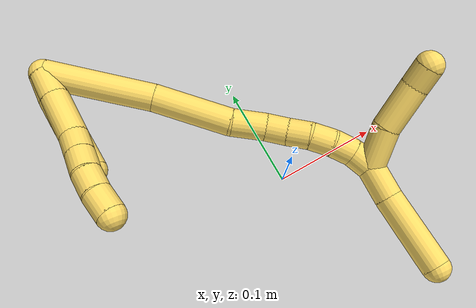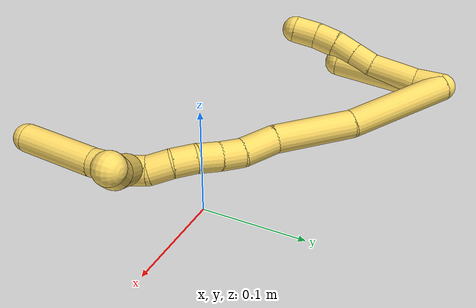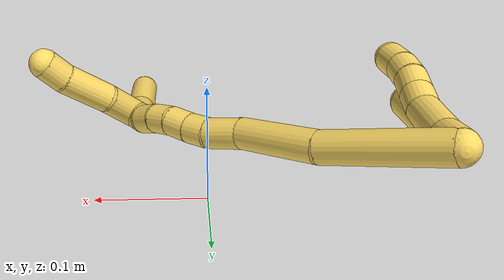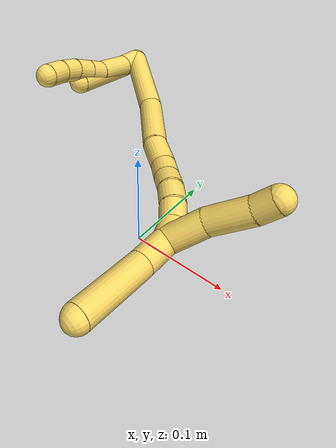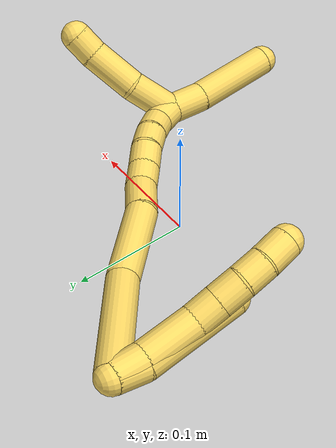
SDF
<sdf version="1.7">
 <world name="default">
  <model name="5">
   <static>0</static>
   <link name="5">
    <collision name="collision-cylinder-e_1_2_8">
     <pose>0.000789 -0.001007 -0.012141 3.05885 0.064699 1.32702</pose>
     <geometry><cylinder><radius>0.0125</radius><length>0.024416</length></cylinder></geometry>
     <surface>
      <friction><ode><mu>1.16</mu><mu2>1.16</mu2><slip1>0</slip1><slip2>0</slip2></ode></friction>
      <contact><ode><kp>1e+06</kp><kd>1</kd><max_vel>0</max_vel><min_depth>0.001</min_depth></ode></contact>
     </surface>
    </collision>
    <visual name="visual-cylinder-e_1_2_8">
     <pose>0.000789 -0.001007 -0.012141 3.05885 0.064699 1.32702</pose>
     <geometry><cylinder><radius>0.0125</radius><length>0.024416</length></cylinder></geometry>
     <material><ambient>1 0.858824 0.4 1</ambient></material>
    </visual>
    <collision name="collision-cylinder-e_2_8_9">
     <pose>0.002899 -0.007188 -0.044853 2.89516 0.062172 0.492013</pose>
     <geometry><cylinder><radius>0.0125</radius><length>0.042508</length></cylinder></geometry>
     <surface>
      <friction><ode><mu>1.16</mu><mu2>1.16</mu2><slip1>0</slip1><slip2>0</slip2></ode></friction>
      <contact><ode><kp>1e+06</kp><kd>1</kd><max_vel>0</max_vel><min_depth>0.001</min_depth></ode></contact>
     </surface>
    </collision>
    <visual name="visual-cylinder-e_2_8_9">
     <pose>0.002899 -0.007188 -0.044853 2.89516 0.062172 0.492013</pose>
     <geometry><cylinder><radius>0.0125</radius><length>0.042508</length></cylinder></geometry>
     <material><ambient>1 0.858824 0.4 1</ambient></material>
    </visual>
    <collision name="collision-cylinder-e_3_9_10">
     <pose>0.003738 -0.016852 -0.074454 2.68021 -0.047752 -0.202654</pose>
     <geometry><cylinder><radius>0.0125</radius><length>0.02019</length></cylinder></geometry>
     <surface>
      <friction><ode><mu>1.16</mu><mu2>1.16</mu2><slip1>0</slip1><slip2>0</slip2></ode></friction>
      <contact><ode><kp>1e+06</kp><kd>1</kd><max_vel>0</max_vel><min_depth>0.001</min_depth></ode></contact>
     </surface>
    </collision>
    <visual name="visual-cylinder-e_3_9_10">
     <pose>0.003738 -0.016852 -0.074454 2.68021 -0.047752 -0.202654</pose>
     <geometry><cylinder><radius>0.0125</radius><length>0.02019</length></cylinder></geometry>
     <material><ambient>1 0.858824 0.4 1</ambient></material>
    </visual>
    <collision name="collision-cylinder-e_4_10_11">
     <pose>0.002654 -0.025874 -0.09267 2.68324 -0.058702 -0.250401</pose>
     <geometry><cylinder><radius>0.0125</radius><length>0.020522</length></cylinder></geometry>
     <surface>
      <friction><ode><mu>1.16</mu><mu2>1.16</mu2><slip1>0</slip1><slip2>0</slip2></ode></friction>
      <contact><ode><kp>1e+06</kp><kd>1</kd><max_vel>0</max_vel><min_depth>0.001</min_depth></ode></contact>
     </surface>
    </collision>
    <visual name="visual-cylinder-e_4_10_11">
     <pose>0.002654 -0.025874 -0.09267 2.68324 -0.058702 -0.250401</pose>
     <geometry><cylinder><radius>0.0125</radius><length>0.020522</length></cylinder></geometry>
     <material><ambient>1 0.858824 0.4 1</ambient></material>
    </visual>
    <collision name="collision-cylinder-e_5_11_12">
     <pose>0.002704 -0.033986 -0.111455 2.78462 0.063595 0.349041</pose>
     <geometry><cylinder><radius>0.0125</radius><length>0.02053</length></cylinder></geometry>
     <surface>
      <friction><ode><mu>1.16</mu><mu2>1.16</mu2><slip1>0</slip1><slip2>0</slip2></ode></friction>
      <contact><ode><kp>1e+06</kp><kd>1</kd><max_vel>0</max_vel><min_depth>0.001</min_depth></ode></contact>
     </surface>
    </collision>
    <visual name="visual-cylinder-e_5_11_12">
     <pose>0.002704 -0.033986 -0.111455 2.78462 0.063595 0.349041</pose>
     <geometry><cylinder><radius>0.0125</radius><length>0.02053</length></cylinder></geometry>
     <material><ambient>1 0.858824 0.4 1</ambient></material>
    </visual>
    <collision name="collision-cylinder-e_6_12_6">
     <pose>0.005386 -0.040695 -0.131313 2.84556 0.18698 1.12269</pose>
     <geometry><cylinder><radius>0.0125</radius><length>0.021834</length></cylinder></geometry>
     <surface>
      <friction><ode><mu>1.16</mu><mu2>1.16</mu2><slip1>0</slip1><slip2>0</slip2></ode></friction>
      <contact><ode><kp>1e+06</kp><kd>1</kd><max_vel>0</max_vel><min_depth>0.001</min_depth></ode></contact>
     </surface>
    </collision>
    <visual name="visual-cylinder-e_6_12_6">
     <pose>0.005386 -0.040695 -0.131313 2.84556 0.18698 1.12269</pose>
     <geometry><cylinder><radius>0.0125</radius><length>0.021834</length></cylinder></geometry>
     <material><ambient>1 0.858824 0.4 1</ambient></material>
    </visual>
    <collision name="collision-cylinder-e_1_2_13">
     <pose>0.000118 0.000502 -0.011959 -3.09963 0.009817 -0.459572</pose>
     <geometry><cylinder><radius>0.0125</radius><length>0.023941</length></cylinder></geometry>
     <surface>
      <friction><ode><mu>1.16</mu><mu2>1.16</mu2><slip1>0</slip1><slip2>0</slip2></ode></friction>
      <contact><ode><kp>1e+06</kp><kd>1</kd><max_vel>0</max_vel><min_depth>0.001</min_depth></ode></contact>
     </surface>
    </collision>
    <visual name="visual-cylinder-e_1_2_13">
     <pose>0.000118 0.000502 -0.011959 -3.09963 0.009817 -0.459572</pose>
     <geometry><cylinder><radius>0.0125</radius><length>0.023941</length></cylinder></geometry>
     <material><ambient>1 0.858824 0.4 1</ambient></material>
    </visual>
    <collision name="collision-cylinder-e_2_13_5">
     <pose>0.004161 -0.006632 -0.060966 2.93832 0.103432 0.939328</pose>
     <geometry><cylinder><radius>0.0125</radius><length>0.076059</length></cylinder></geometry>
     <surface>
      <friction><ode><mu>1.16</mu><mu2>1.16</mu2><slip1>0</slip1><slip2>0</slip2></ode></friction>
      <contact><ode><kp>1e+06</kp><kd>1</kd><max_vel>0</max_vel><min_depth>0.001</min_depth></ode></contact>
     </surface>
    </collision>
    <visual name="visual-cylinder-e_2_13_5">
     <pose>0.004161 -0.006632 -0.060966 2.93832 0.103432 0.939328</pose>
     <geometry><cylinder><radius>0.0125</radius><length>0.076059</length></cylinder></geometry>
     <material><ambient>1 0.858824 0.4 1</ambient></material>
    </visual>
    <collision name="collision-cylinder-e_1_2_14">
     <pose>0.04038 -0.001875 -0.026286 3.0704 0.992581 3.01025</pose>
     <geometry><cylinder><radius>0.0125</radius><length>0.096437</length></cylinder></geometry>
     <surface>
      <friction><ode><mu>1.16</mu><mu2>1.16</mu2><slip1>0</slip1><slip2>0</slip2></ode></friction>
      <contact><ode><kp>1e+06</kp><kd>1</kd><max_vel>0</max_vel><min_depth>0.001</min_depth></ode></contact>
     </surface>
    </collision>
    <visual name="visual-cylinder-e_1_2_14">
     <pose>0.04038 -0.001875 -0.026286 3.0704 0.992581 3.01025</pose>
     <geometry><cylinder><radius>0.0125</radius><length>0.096437</length></cylinder></geometry>
     <material><ambient>1 0.858824 0.4 1</ambient></material>
    </visual>
    <collision name="collision-cylinder-e_2_14_15">
     <pose>0.107291 -0.009146 -0.075829 2.91356 0.838035 2.63828</pose>
     <geometry><cylinder><radius>0.0125</radius><length>0.071383</length></cylinder></geometry>
     <surface>
      <friction><ode><mu>1.16</mu><mu2>1.16</mu2><slip1>0</slip1><slip2>0</slip2></ode></friction>
      <contact><ode><kp>1e+06</kp><kd>1</kd><max_vel>0</max_vel><min_depth>0.001</min_depth></ode></contact>
     </surface>
    </collision>
    <visual name="visual-cylinder-e_2_14_15">
     <pose>0.107291 -0.009146 -0.075829 2.91356 0.838035 2.63828</pose>
     <geometry><cylinder><radius>0.0125</radius><length>0.071383</length></cylinder></geometry>
     <material><ambient>1 0.858824 0.4 1</ambient></material>
    </visual>
    <collision name="collision-cylinder-e_3_15_16">
     <pose>0.147437 -0.015738 -0.106682 2.98565 1.05669 2.87547</pose>
     <geometry><cylinder><radius>0.0125</radius><length>0.031274</length></cylinder></geometry>
     <surface>
      <friction><ode><mu>1.16</mu><mu2>1.16</mu2><slip1>0</slip1><slip2>0</slip2></ode></friction>
      <contact><ode><kp>1e+06</kp><kd>1</kd><max_vel>0</max_vel><min_depth>0.001</min_depth></ode></contact>
     </surface>
    </collision>
    <visual name="visual-cylinder-e_3_15_16">
     <pose>0.147437 -0.015738 -0.106682 2.98565 1.05669 2.87547</pose>
     <geometry><cylinder><radius>0.0125</radius><length>0.031274</length></cylinder></geometry>
     <material><ambient>1 0.858824 0.4 1</ambient></material>
    </visual>
    <collision name="collision-cylinder-e_4_16_17">
     <pose>0.168802 -0.019409 -0.120219 2.7465 0.877725 2.33545</pose>
     <geometry><cylinder><radius>0.0125</radius><length>0.020147</length></cylinder></geometry>
     <surface>
      <friction><ode><mu>1.16</mu><mu2>1.16</mu2><slip1>0</slip1><slip2>0</slip2></ode></friction>
      <contact><ode><kp>1e+06</kp><kd>1</kd><max_vel>0</max_vel><min_depth>0.001</min_depth></ode></contact>
     </surface>
    </collision>
    <visual name="visual-cylinder-e_4_16_17">
     <pose>0.168802 -0.019409 -0.120219 2.7465 0.877725 2.33545</pose>
     <geometry><cylinder><radius>0.0125</radius><length>0.020147</length></cylinder></geometry>
     <material><ambient>1 0.858824 0.4 1</ambient></material>
    </visual>
    <collision name="collision-cylinder-e_5_17_18">
     <pose>0.184198 -0.025316 -0.13195 2.60697 0.849062 2.05214</pose>
     <geometry><cylinder><radius>0.0125</radius><length>0.020374</length></cylinder></geometry>
     <surface>
      <friction><ode><mu>1.16</mu><mu2>1.16</mu2><slip1>0</slip1><slip2>0</slip2></ode></friction>
      <contact><ode><kp>1e+06</kp><kd>1</kd><max_vel>0</max_vel><min_depth>0.001</min_depth></ode></contact>
     </surface>
    </collision>
    <visual name="visual-cylinder-e_5_17_18">
     <pose>0.184198 -0.025316 -0.13195 2.60697 0.849062 2.05214</pose>
     <geometry><cylinder><radius>0.0125</radius><length>0.020374</length></cylinder></geometry>
     <material><ambient>1 0.858824 0.4 1</ambient></material>
    </visual>
    <collision name="collision-cylinder-e_6_18_19">
     <pose>0.199373 -0.030171 -0.144351 2.92916 0.838926 2.67221</pose>
     <geometry><cylinder><radius>0.0125</radius><length>0.020239</length></cylinder></geometry>
     <surface>
      <friction><ode><mu>1.16</mu><mu2>1.16</mu2><slip1>0</slip1><slip2>0</slip2></ode></friction>
      <contact><ode><kp>1e+06</kp><kd>1</kd><max_vel>0</max_vel><min_depth>0.001</min_depth></ode></contact>
     </surface>
    </collision>
    <visual name="visual-cylinder-e_6_18_19">
     <pose>0.199373 -0.030171 -0.144351 2.92916 0.838926 2.67221</pose>
     <geometry><cylinder><radius>0.0125</radius><length>0.020239</length></cylinder></geometry>
     <material><ambient>1 0.858824 0.4 1</ambient></material>
    </visual>
    <collision name="collision-cylinder-e_7_19_20">
     <pose>0.213937 -0.031361 -0.158132 -3.10879 0.775711 -3.06133</pose>
     <geometry><cylinder><radius>0.0125</radius><length>0.020097</length></cylinder></geometry>
     <surface>
      <friction><ode><mu>1.16</mu><mu2>1.16</mu2><slip1>0</slip1><slip2>0</slip2></ode></friction>
      <contact><ode><kp>1e+06</kp><kd>1</kd><max_vel>0</max_vel><min_depth>0.001</min_depth></ode></contact>
     </surface>
    </collision>
    <visual name="visual-cylinder-e_7_19_20">
     <pose>0.213937 -0.031361 -0.158132 -3.10879 0.775711 -3.06133</pose>
     <geometry><cylinder><radius>0.0125</radius><length>0.020097</length></cylinder></geometry>
     <material><ambient>1 0.858824 0.4 1</ambient></material>
    </visual>
    <collision name="collision-cylinder-e_8_20_1">
     <pose>0.225443 -0.032259 -0.174203 3.01499 0.462106 2.61523</pose>
     <geometry><cylinder><radius>0.0125</radius><length>0.02005</length></cylinder></geometry>
     <surface>
      <friction><ode><mu>1.16</mu><mu2>1.16</mu2><slip1>0</slip1><slip2>0</slip2></ode></friction>
      <contact><ode><kp>1e+06</kp><kd>1</kd><max_vel>0</max_vel><min_depth>0.001</min_depth></ode></contact>
     </surface>
    </collision>
    <visual name="visual-cylinder-e_8_20_1">
     <pose>0.225443 -0.032259 -0.174203 3.01499 0.462106 2.61523</pose>
     <geometry><cylinder><radius>0.0125</radius><length>0.02005</length></cylinder></geometry>
     <material><ambient>1 0.858824 0.4 1</ambient></material>
    </visual>
    <collision name="collision-cylinder-e_1_1_21">
     <pose>0.238327 -0.044893 -0.170567 0.74225 0.459285 0.181445</pose>
     <geometry><cylinder><radius>0.0125</radius><length>0.037962</length></cylinder></geometry>
     <surface>
      <friction><ode><mu>1.16</mu><mu2>1.16</mu2><slip1>0</slip1><slip2>0</slip2></ode></friction>
      <contact><ode><kp>1e+06</kp><kd>1</kd><max_vel>0</max_vel><min_depth>0.001</min_depth></ode></contact>
     </surface>
    </collision>
    <visual name="visual-cylinder-e_1_1_21">
     <pose>0.238327 -0.044893 -0.170567 0.74225 0.459285 0.181445</pose>
     <geometry><cylinder><radius>0.0125</radius><length>0.037962</length></cylinder></geometry>
     <material><ambient>1 0.858824 0.4 1</ambient></material>
    </visual>
    <collision name="collision-cylinder-e_2_21_22">
     <pose>0.259485 -0.069106 -0.147671 0.887171 0.660651 0.323021</pose>
     <geometry><cylinder><radius>0.0125</radius><length>0.041535</length></cylinder></geometry>
     <surface>
      <friction><ode><mu>1.16</mu><mu2>1.16</mu2><slip1>0</slip1><slip2>0</slip2></ode></friction>
      <contact><ode><kp>1e+06</kp><kd>1</kd><max_vel>0</max_vel><min_depth>0.001</min_depth></ode></contact>
     </surface>
    </collision>
    <visual name="visual-cylinder-e_2_21_22">
     <pose>0.259485 -0.069106 -0.147671 0.887171 0.660651 0.323021</pose>
     <geometry><cylinder><radius>0.0125</radius><length>0.041535</length></cylinder></geometry>
     <material><ambient>1 0.858824 0.4 1</ambient></material>
    </visual>
    <collision name="collision-cylinder-e_3_22_4">
     <pose>0.277273 -0.089454 -0.132693 1.02652 0.514536 0.294441</pose>
     <geometry><cylinder><radius>0.0125</radius><length>0.020503</length></cylinder></geometry>
     <surface>
      <friction><ode><mu>1.16</mu><mu2>1.16</mu2><slip1>0</slip1><slip2>0</slip2></ode></friction>
      <contact><ode><kp>1e+06</kp><kd>1</kd><max_vel>0</max_vel><min_depth>0.001</min_depth></ode></contact>
     </surface>
    </collision>
    <visual name="visual-cylinder-e_3_22_4">
     <pose>0.277273 -0.089454 -0.132693 1.02652 0.514536 0.294441</pose>
     <geometry><cylinder><radius>0.0125</radius><length>0.020503</length></cylinder></geometry>
     <material><ambient>1 0.858824 0.4 1</ambient></material>
    </visual>
    <collision name="collision-cylinder-e_1_1_23">
     <pose>0.231211 -0.033844 -0.198591 3.11239 0.083621 2.46985</pose>
     <geometry><cylinder><radius>0.0125</radius><length>0.031093</length></cylinder></geometry>
     <surface>
      <friction><ode><mu>1.16</mu><mu2>1.16</mu2><slip1>0</slip1><slip2>0</slip2></ode></friction>
      <contact><ode><kp>1e+06</kp><kd>1</kd><max_vel>0</max_vel><min_depth>0.001</min_depth></ode></contact>
     </surface>
    </collision>
    <visual name="visual-cylinder-e_1_1_23">
     <pose>0.231211 -0.033844 -0.198591 3.11239 0.083621 2.46985</pose>
     <geometry><cylinder><radius>0.0125</radius><length>0.031093</length></cylinder></geometry>
     <material><ambient>1 0.858824 0.4 1</ambient></material>
    </visual>
    <collision name="collision-cylinder-e_2_23_3">
     <pose>0.235368 -0.040445 -0.247856 2.96156 0.08306 0.862891</pose>
     <geometry><cylinder><radius>0.0125</radius><length>0.068907</length></cylinder></geometry>
     <surface>
      <friction><ode><mu>1.16</mu><mu2>1.16</mu2><slip1>0</slip1><slip2>0</slip2></ode></friction>
      <contact><ode><kp>1e+06</kp><kd>1</kd><max_vel>0</max_vel><min_depth>0.001</min_depth></ode></contact>
     </surface>
    </collision>
    <visual name="visual-cylinder-e_2_23_3">
     <pose>0.235368 -0.040445 -0.247856 2.96156 0.08306 0.862891</pose>
     <geometry><cylinder><radius>0.0125</radius><length>0.068907</length></cylinder></geometry>
     <material><ambient>1 0.858824 0.4 1</ambient></material>
    </visual>
    <collision name="collision-sphere-3">
     <pose>0.238226 -0.046593 -0.281636 0 -0 0</pose>
     <geometry><sphere><radius>0.0125</radius></sphere></geometry>
     <surface>
      <friction><ode><mu>1.16</mu><mu2>1.16</mu2><slip1>0</slip1><slip2>0</slip2></ode></friction>
      <contact><ode><kp>1e+06</kp><kd>1</kd><max_vel>0</max_vel><min_depth>0.001</min_depth></ode></contact>
     </surface>
    </collision>
    <visual name="visual-sphere-3">
     <pose>0.238226 -0.046593 -0.281636 0 -0 0</pose>
     <geometry><sphere><radius>0.0125</radius></sphere></geometry>
     <material><ambient>1 0.858824 0.4 1</ambient></material>
    </visual>
    <collision name="collision-sphere-23">
     <pose>0.232509 -0.034297 -0.214077 0 -0 0</pose>
     <geometry><sphere><radius>0.0125</radius></sphere></geometry>
     <surface>
      <friction><ode><mu>1.16</mu><mu2>1.16</mu2><slip1>0</slip1><slip2>0</slip2></ode></friction>
      <contact><ode><kp>1e+06</kp><kd>1</kd><max_vel>0</max_vel><min_depth>0.001</min_depth></ode></contact>
     </surface>
    </collision>
    <visual name="visual-sphere-23">
     <pose>0.232509 -0.034297 -0.214077 0 -0 0</pose>
     <geometry><sphere><radius>0.0125</radius></sphere></geometry>
     <material><ambient>1 0.858824 0.4 1</ambient></material>
    </visual>
    <collision name="collision-sphere-4">
     <pose>0.282318 -0.097088 -0.128072 0 -0 0</pose>
     <geometry><sphere><radius>0.0125</radius></sphere></geometry>
     <surface>
      <friction><ode><mu>1.16</mu><mu2>1.16</mu2><slip1>0</slip1><slip2>0</slip2></ode></friction>
      <contact><ode><kp>1e+06</kp><kd>1</kd><max_vel>0</max_vel><min_depth>0.001</min_depth></ode></contact>
     </surface>
    </collision>
    <visual name="visual-sphere-4">
     <pose>0.282318 -0.097088 -0.128072 0 -0 0</pose>
     <geometry><sphere><radius>0.0125</radius></sphere></geometry>
     <material><ambient>1 0.858824 0.4 1</ambient></material>
    </visual>
    <collision name="collision-sphere-22">
     <pose>0.272228 -0.081819 -0.137314 0 -0 0</pose>
     <geometry><sphere><radius>0.0125</radius></sphere></geometry>
     <surface>
      <friction><ode><mu>1.16</mu><mu2>1.16</mu2><slip1>0</slip1><slip2>0</slip2></ode></friction>
      <contact><ode><kp>1e+06</kp><kd>1</kd><max_vel>0</max_vel><min_depth>0.001</min_depth></ode></contact>
     </surface>
    </collision>
    <visual name="visual-sphere-22">
     <pose>0.272228 -0.081819 -0.137314 0 -0 0</pose>
     <geometry><sphere><radius>0.0125</radius></sphere></geometry>
     <material><ambient>1 0.858824 0.4 1</ambient></material>
    </visual>
    <collision name="collision-sphere-21">
     <pose>0.246741 -0.056393 -0.158028 0 -0 0</pose>
     <geometry><sphere><radius>0.0125</radius></sphere></geometry>
     <surface>
      <friction><ode><mu>1.16</mu><mu2>1.16</mu2><slip1>0</slip1><slip2>0</slip2></ode></friction>
      <contact><ode><kp>1e+06</kp><kd>1</kd><max_vel>0</max_vel><min_depth>0.001</min_depth></ode></contact>
     </surface>
    </collision>
    <visual name="visual-sphere-21">
     <pose>0.246741 -0.056393 -0.158028 0 -0 0</pose>
     <geometry><sphere><radius>0.0125</radius></sphere></geometry>
     <material><ambient>1 0.858824 0.4 1</ambient></material>
    </visual>
    <collision name="collision-sphere-1">
     <pose>0.229912 -0.033392 -0.183105 0 -0 0</pose>
     <geometry><sphere><radius>0.0125</radius></sphere></geometry>
     <surface>
      <friction><ode><mu>1.16</mu><mu2>1.16</mu2><slip1>0</slip1><slip2>0</slip2></ode></friction>
      <contact><ode><kp>1e+06</kp><kd>1</kd><max_vel>0</max_vel><min_depth>0.001</min_depth></ode></contact>
     </surface>
    </collision>
    <visual name="visual-sphere-1">
     <pose>0.229912 -0.033392 -0.183105 0 -0 0</pose>
     <geometry><sphere><radius>0.0125</radius></sphere></geometry>
     <material><ambient>1 0.858824 0.4 1</ambient></material>
    </visual>
    <collision name="collision-sphere-12">
     <pose>0.003357 -0.037566 -0.121053 0 -0 0</pose>
     <geometry><sphere><radius>0.0125</radius></sphere></geometry>
     <surface>
      <friction><ode><mu>1.16</mu><mu2>1.16</mu2><slip1>0</slip1><slip2>0</slip2></ode></friction>
      <contact><ode><kp>1e+06</kp><kd>1</kd><max_vel>0</max_vel><min_depth>0.001</min_depth></ode></contact>
     </surface>
    </collision>
    <visual name="visual-sphere-12">
     <pose>0.003357 -0.037566 -0.121053 0 -0 0</pose>
     <geometry><sphere><radius>0.0125</radius></sphere></geometry>
     <material><ambient>1 0.858824 0.4 1</ambient></material>
    </visual>
    <collision name="collision-sphere-11">
     <pose>0.002052 -0.030406 -0.101856 0 -0 0</pose>
     <geometry><sphere><radius>0.0125</radius></sphere></geometry>
     <surface>
      <friction><ode><mu>1.16</mu><mu2>1.16</mu2><slip1>0</slip1><slip2>0</slip2></ode></friction>
      <contact><ode><kp>1e+06</kp><kd>1</kd><max_vel>0</max_vel><min_depth>0.001</min_depth></ode></contact>
     </surface>
    </collision>
    <visual name="visual-sphere-11">
     <pose>0.002052 -0.030406 -0.101856 0 -0 0</pose>
     <geometry><sphere><radius>0.0125</radius></sphere></geometry>
     <material><ambient>1 0.858824 0.4 1</ambient></material>
    </visual>
    <collision name="collision-sphere-10">
     <pose>0.003256 -0.021341 -0.083484 0 -0 0</pose>
     <geometry><sphere><radius>0.0125</radius></sphere></geometry>
     <surface>
      <friction><ode><mu>1.16</mu><mu2>1.16</mu2><slip1>0</slip1><slip2>0</slip2></ode></friction>
      <contact><ode><kp>1e+06</kp><kd>1</kd><max_vel>0</max_vel><min_depth>0.001</min_depth></ode></contact>
     </surface>
    </collision>
    <visual name="visual-sphere-10">
     <pose>0.003256 -0.021341 -0.083484 0 -0 0</pose>
     <geometry><sphere><radius>0.0125</radius></sphere></geometry>
     <material><ambient>1 0.858824 0.4 1</ambient></material>
    </visual>
    <collision name="collision-sphere-9">
     <pose>0.00422 -0.012363 -0.065425 0 -0 0</pose>
     <geometry><sphere><radius>0.0125</radius></sphere></geometry>
     <surface>
      <friction><ode><mu>1.16</mu><mu2>1.16</mu2><slip1>0</slip1><slip2>0</slip2></ode></friction>
      <contact><ode><kp>1e+06</kp><kd>1</kd><max_vel>0</max_vel><min_depth>0.001</min_depth></ode></contact>
     </surface>
    </collision>
    <visual name="visual-sphere-9">
     <pose>0.00422 -0.012363 -0.065425 0 -0 0</pose>
     <geometry><sphere><radius>0.0125</radius></sphere></geometry>
     <material><ambient>1 0.858824 0.4 1</ambient></material>
    </visual>
    <collision name="collision-sphere-2">
     <geometry><sphere><radius>0.0125</radius></sphere></geometry>
     <surface>
      <friction><ode><mu>1.16</mu><mu2>1.16</mu2><slip1>0</slip1><slip2>0</slip2></ode></friction>
      <contact><ode><kp>1e+06</kp><kd>1</kd><max_vel>0</max_vel><min_depth>0.001</min_depth></ode></contact>
     </surface>
    </collision>
    <visual name="visual-sphere-2">
     <geometry><sphere><radius>0.0125</radius></sphere></geometry>
     <material><ambient>1 0.858824 0.4 1</ambient></material>
    </visual>
    <collision name="collision-sphere-19">
     <pose>0.206901 -0.031596 -0.150962 0 -0 0</pose>
     <geometry><sphere><radius>0.0125</radius></sphere></geometry>
     <surface>
      <friction><ode><mu>1.16</mu><mu2>1.16</mu2><slip1>0</slip1><slip2>0</slip2></ode></friction>
      <contact><ode><kp>1e+06</kp><kd>1</kd><max_vel>0</max_vel><min_depth>0.001</min_depth></ode></contact>
     </surface>
    </collision>
    <visual name="visual-sphere-19">
     <pose>0.206901 -0.031596 -0.150962 0 -0 0</pose>
     <geometry><sphere><radius>0.0125</radius></sphere></geometry>
     <material><ambient>1 0.858824 0.4 1</ambient></material>
    </visual>
    <collision name="collision-sphere-8">
     <pose>0.001579 -0.002014 -0.024281 0 -0 0</pose>
     <geometry><sphere><radius>0.0125</radius></sphere></geometry>
     <surface>
      <friction><ode><mu>1.16</mu><mu2>1.16</mu2><slip1>0</slip1><slip2>0</slip2></ode></friction>
      <contact><ode><kp>1e+06</kp><kd>1</kd><max_vel>0</max_vel><min_depth>0.001</min_depth></ode></contact>
     </surface>
    </collision>
    <visual name="visual-sphere-8">
     <pose>0.001579 -0.002014 -0.024281 0 -0 0</pose>
     <geometry><sphere><radius>0.0125</radius></sphere></geometry>
     <material><ambient>1 0.858824 0.4 1</ambient></material>
    </visual>
    <collision name="collision-sphere-6">
     <pose>0.007415 -0.043824 -0.141573 0 -0 0</pose>
     <geometry><sphere><radius>0.0125</radius></sphere></geometry>
     <surface>
      <friction><ode><mu>1.16</mu><mu2>1.16</mu2><slip1>0</slip1><slip2>0</slip2></ode></friction>
      <contact><ode><kp>1e+06</kp><kd>1</kd><max_vel>0</max_vel><min_depth>0.001</min_depth></ode></contact>
     </surface>
    </collision>
    <visual name="visual-sphere-6">
     <pose>0.007415 -0.043824 -0.141573 0 -0 0</pose>
     <geometry><sphere><radius>0.0125</radius></sphere></geometry>
     <material><ambient>1 0.858824 0.4 1</ambient></material>
    </visual>
    <collision name="collision-sphere-13">
     <pose>0.000235 0.001004 -0.023919 0 -0 0</pose>
     <geometry><sphere><radius>0.0125</radius></sphere></geometry>
     <surface>
      <friction><ode><mu>1.16</mu><mu2>1.16</mu2><slip1>0</slip1><slip2>0</slip2></ode></friction>
      <contact><ode><kp>1e+06</kp><kd>1</kd><max_vel>0</max_vel><min_depth>0.001</min_depth></ode></contact>
     </surface>
    </collision>
    <visual name="visual-sphere-13">
     <pose>0.000235 0.001004 -0.023919 0 -0 0</pose>
     <geometry><sphere><radius>0.0125</radius></sphere></geometry>
     <material><ambient>1 0.858824 0.4 1</ambient></material>
    </visual>
    <collision name="collision-sphere-5">
     <pose>0.008088 -0.014268 -0.098014 0 -0 0</pose>
     <geometry><sphere><radius>0.0125</radius></sphere></geometry>
     <surface>
      <friction><ode><mu>1.16</mu><mu2>1.16</mu2><slip1>0</slip1><slip2>0</slip2></ode></friction>
      <contact><ode><kp>1e+06</kp><kd>1</kd><max_vel>0</max_vel><min_depth>0.001</min_depth></ode></contact>
     </surface>
    </collision>
    <visual name="visual-sphere-5">
     <pose>0.008088 -0.014268 -0.098014 0 -0 0</pose>
     <geometry><sphere><radius>0.0125</radius></sphere></geometry>
     <material><ambient>1 0.858824 0.4 1</ambient></material>
    </visual>
    <collision name="collision-sphere-14">
     <pose>0.08076 -0.003749 -0.052572 0 -0 0</pose>
     <geometry><sphere><radius>0.0125</radius></sphere></geometry>
     <surface>
      <friction><ode><mu>1.16</mu><mu2>1.16</mu2><slip1>0</slip1><slip2>0</slip2></ode></friction>
      <contact><ode><kp>1e+06</kp><kd>1</kd><max_vel>0</max_vel><min_depth>0.001</min_depth></ode></contact>
     </surface>
    </collision>
    <visual name="visual-sphere-14">
     <pose>0.08076 -0.003749 -0.052572 0 -0 0</pose>
     <geometry><sphere><radius>0.0125</radius></sphere></geometry>
     <material><ambient>1 0.858824 0.4 1</ambient></material>
    </visual>
    <collision name="collision-sphere-15">
     <pose>0.133821 -0.014544 -0.099086 0 -0 0</pose>
     <geometry><sphere><radius>0.0125</radius></sphere></geometry>
     <surface>
      <friction><ode><mu>1.16</mu><mu2>1.16</mu2><slip1>0</slip1><slip2>0</slip2></ode></friction>
      <contact><ode><kp>1e+06</kp><kd>1</kd><max_vel>0</max_vel><min_depth>0.001</min_depth></ode></contact>
     </surface>
    </collision>
    <visual name="visual-sphere-15">
     <pose>0.133821 -0.014544 -0.099086 0 -0 0</pose>
     <geometry><sphere><radius>0.0125</radius></sphere></geometry>
     <material><ambient>1 0.858824 0.4 1</ambient></material>
    </visual>
    <collision name="collision-sphere-16">
     <pose>0.161052 -0.016932 -0.114278 0 -0 0</pose>
     <geometry><sphere><radius>0.0125</radius></sphere></geometry>
     <surface>
      <friction><ode><mu>1.16</mu><mu2>1.16</mu2><slip1>0</slip1><slip2>0</slip2></ode></friction>
      <contact><ode><kp>1e+06</kp><kd>1</kd><max_vel>0</max_vel><min_depth>0.001</min_depth></ode></contact>
     </surface>
    </collision>
    <visual name="visual-sphere-16">
     <pose>0.161052 -0.016932 -0.114278 0 -0 0</pose>
     <geometry><sphere><radius>0.0125</radius></sphere></geometry>
     <material><ambient>1 0.858824 0.4 1</ambient></material>
    </visual>
    <collision name="collision-sphere-17">
     <pose>0.176551 -0.021886 -0.126159 0 -0 0</pose>
     <geometry><sphere><radius>0.0125</radius></sphere></geometry>
     <surface>
      <friction><ode><mu>1.16</mu><mu2>1.16</mu2><slip1>0</slip1><slip2>0</slip2></ode></friction>
      <contact><ode><kp>1e+06</kp><kd>1</kd><max_vel>0</max_vel><min_depth>0.001</min_depth></ode></contact>
     </surface>
    </collision>
    <visual name="visual-sphere-17">
     <pose>0.176551 -0.021886 -0.126159 0 -0 0</pose>
     <geometry><sphere><radius>0.0125</radius></sphere></geometry>
     <material><ambient>1 0.858824 0.4 1</ambient></material>
    </visual>
    <collision name="collision-sphere-18">
     <pose>0.191845 -0.028745 -0.137741 0 -0 0</pose>
     <geometry><sphere><radius>0.0125</radius></sphere></geometry>
     <surface>
      <friction><ode><mu>1.16</mu><mu2>1.16</mu2><slip1>0</slip1><slip2>0</slip2></ode></friction>
      <contact><ode><kp>1e+06</kp><kd>1</kd><max_vel>0</max_vel><min_depth>0.001</min_depth></ode></contact>
     </surface>
    </collision>
    <visual name="visual-sphere-18">
     <pose>0.191845 -0.028745 -0.137741 0 -0 0</pose>
     <geometry><sphere><radius>0.0125</radius></sphere></geometry>
     <material><ambient>1 0.858824 0.4 1</ambient></material>
    </visual>
    <collision name="collision-sphere-20">
     <pose>0.220973 -0.031126 -0.165302 0 -0 0</pose>
     <geometry><sphere><radius>0.0125</radius></sphere></geometry>
     <surface>
      <friction><ode><mu>1.16</mu><mu2>1.16</mu2><slip1>0</slip1><slip2>0</slip2></ode></friction>
      <contact><ode><kp>1e+06</kp><kd>1</kd><max_vel>0</max_vel><min_depth>0.001</min_depth></ode></contact>
     </surface>
    </collision>
    <visual name="visual-sphere-20">
     <pose>0.220973 -0.031126 -0.165302 0 -0 0</pose>
     <geometry><sphere><radius>0.0125</radius></sphere></geometry>
     <material><ambient>1 0.858824 0.4 1</ambient></material>
    </visual>
    <inertial>
     <pose>0.114473 -0.023531 -0.107009 0 -0 0</pose>
     <mass>0.75</mass>
     <inertia>
      <ixx>0.000108</ixx>
      <ixy>0</ixy>
      <ixz>0</ixz>
      <iyy>0.000151</iyy>
      <iyz>0</iyz>
      <izz>-0.000114</izz>
     </inertia>
    </inertial>
   </link>
   <pose>-0.147993 0.169332 0.096589 -1.50192 0.213817 -0.097077</pose>
  </model>
 </world>
</sdf>
